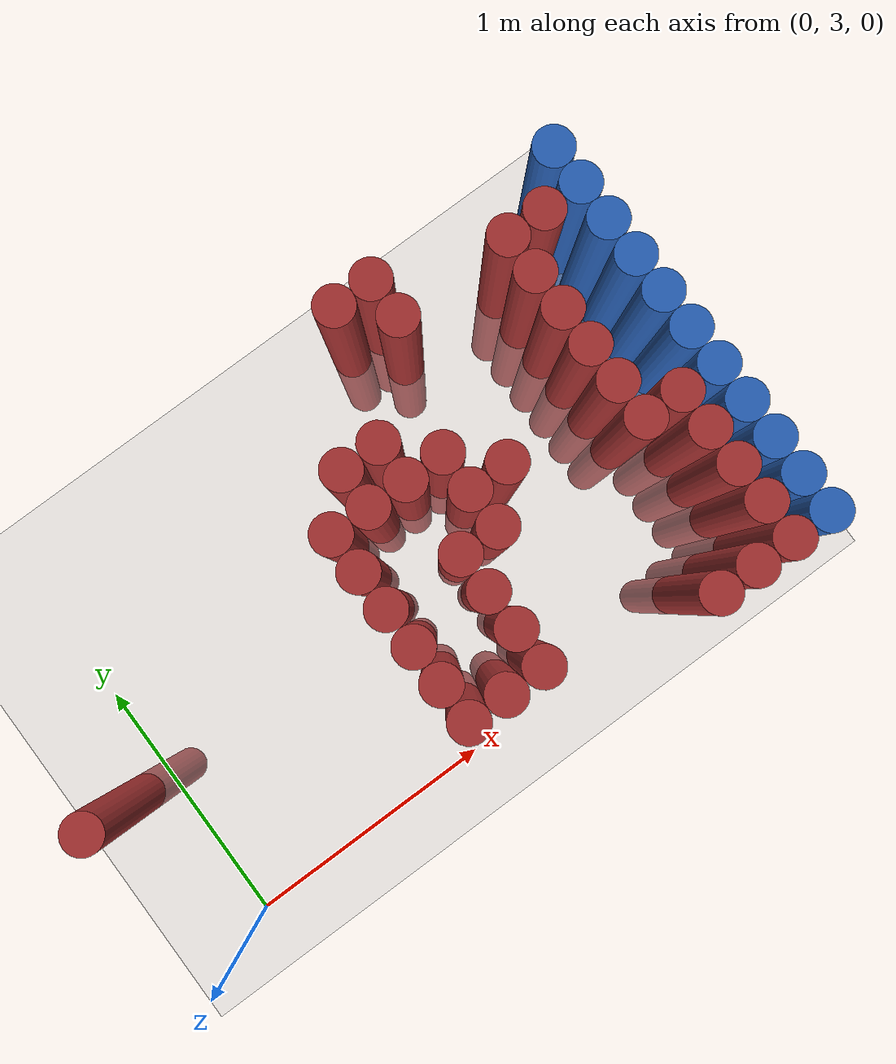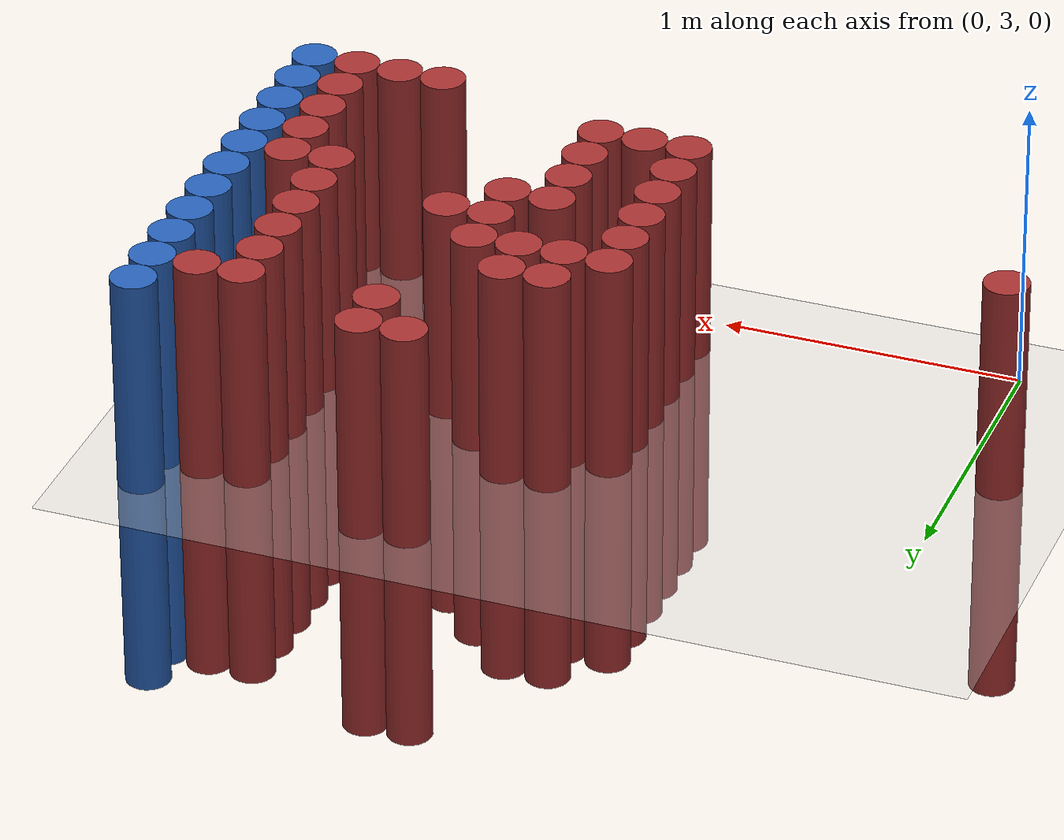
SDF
<sdf version="1.6">
 <world name="default">
  <model name="ground_plane">
   <static>1</static>
   <link name="link">
    <collision name="collision">
     <geometry><plane><normal>0 0 1</normal><size>100 100</size></plane></geometry>
     <surface><friction><ode><mu>100</mu><mu2>50</mu2></ode></friction></surface>
    </collision>
    <visual name="visual">
     <cast_shadows>0</cast_shadows>
     <geometry><plane><normal>0 0 1</normal><size>100 100</size></plane></geometry>
     <material>
      <script><uri>file://media/materials/scripts/gazebo.material</uri><name>Gazebo/Grey</name></script>
     </material>
    </visual>
   </link>
  </model>
  <model name="unit_cylinder_168">
   <static>1</static>
   <pose>-0.125000 3.625000 0.000000 0.000000 0.000000 0.000000</pose>
   <link name="link">
    <inertial>
     <mass>1</mass>
     <inertia><ixx>0.145833</ixx><ixy>0</ixy><ixz>0</ixz><iyy>0.145833</iyy><iyz>0</iyz><izz>0.125</izz></inertia>
    </inertial>
    <collision name="collision">
     <geometry><cylinder><radius>0.075000</radius><length>1.5</length></cylinder></geometry>
    </collision>
    <visual name="visual">
     <geometry><cylinder><radius>0.075000</radius><length>1.5</length></cylinder></geometry>
     <material>
      <ambient>0.648000 0.192000 0.192000 1</ambient>
      <diffuse>0.648000 0.192000 0.192000 1</diffuse>
     </material>
     <material>
      <script><name>Gazebo/Grey</name><uri>file://media/materials/scripts/gazebo.material</uri></script>
     </material>
    </visual>
   </link>
  </model>
  <model name="unit_cylinder_184">
   <static>1</static>
   <pose>1.075000 3.175000 0.000000 0.000000 0.000000 0.000000</pose>
   <link name="link">
    <inertial>
     <mass>1</mass>
     <inertia><ixx>0.145833</ixx><ixy>0</ixy><ixz>0</ixz><iyy>0.145833</iyy><iyz>0</iyz><izz>0.125</izz></inertia>
    </inertial>
    <collision name="collision">
     <geometry><cylinder><radius>0.075000</radius><length>1.5</length></cylinder></geometry>
    </collision>
    <visual name="visual">
     <geometry><cylinder><radius>0.075000</radius><length>1.5</length></cylinder></geometry>
     <material>
      <ambient>0.648000 0.192000 0.192000 1</ambient>
      <diffuse>0.648000 0.192000 0.192000 1</diffuse>
     </material>
     <material>
      <script><name>Gazebo/Grey</name><uri>file://media/materials/scripts/gazebo.material</uri></script>
     </material>
    </visual>
   </link>
  </model>
  <model name="unit_cylinder_185">
   <static>1</static>
   <pose>1.075000 3.325000 0.000000 0.000000 0.000000 0.000000</pose>
   <link name="link">
    <inertial>
     <mass>1</mass>
     <inertia><ixx>0.145833</ixx><ixy>0</ixy><ixz>0</ixz><iyy>0.145833</iyy><iyz>0</iyz><izz>0.125</izz></inertia>
    </inertial>
    <collision name="collision">
     <geometry><cylinder><radius>0.075000</radius><length>1.5</length></cylinder></geometry>
    </collision>
    <visual name="visual">
     <geometry><cylinder><radius>0.075000</radius><length>1.5</length></cylinder></geometry>
     <material>
      <ambient>0.648000 0.192000 0.192000 1</ambient>
      <diffuse>0.648000 0.192000 0.192000 1</diffuse>
     </material>
     <material>
      <script><name>Gazebo/Grey</name><uri>file://media/materials/scripts/gazebo.material</uri></script>
     </material>
    </visual>
   </link>
  </model>
  <model name="unit_cylinder_186">
   <static>1</static>
   <pose>1.075000 3.475000 0.000000 0.000000 0.000000 0.000000</pose>
   <link name="link">
    <inertial>
     <mass>1</mass>
     <inertia><ixx>0.145833</ixx><ixy>0</ixy><ixz>0</ixz><iyy>0.145833</iyy><iyz>0</iyz><izz>0.125</izz></inertia>
    </inertial>
    <collision name="collision">
     <geometry><cylinder><radius>0.075000</radius><length>1.5</length></cylinder></geometry>
    </collision>
    <visual name="visual">
     <geometry><cylinder><radius>0.075000</radius><length>1.5</length></cylinder></geometry>
     <material>
      <ambient>0.648000 0.192000 0.192000 1</ambient>
      <diffuse>0.648000 0.192000 0.192000 1</diffuse>
     </material>
     <material>
      <script><name>Gazebo/Grey</name><uri>file://media/materials/scripts/gazebo.material</uri></script>
     </material>
    </visual>
   </link>
  </model>
  <model name="unit_cylinder_187">
   <static>1</static>
   <pose>1.075000 3.625000 0.000000 0.000000 0.000000 0.000000</pose>
   <link name="link">
    <inertial>
     <mass>1</mass>
     <inertia><ixx>0.145833</ixx><ixy>0</ixy><ixz>0</ixz><iyy>0.145833</iyy><iyz>0</iyz><izz>0.125</izz></inertia>
    </inertial>
    <collision name="collision">
     <geometry><cylinder><radius>0.075000</radius><length>1.5</length></cylinder></geometry>
    </collision>
    <visual name="visual">
     <geometry><cylinder><radius>0.075000</radius><length>1.5</length></cylinder></geometry>
     <material>
      <ambient>0.648000 0.192000 0.192000 1</ambient>
      <diffuse>0.648000 0.192000 0.192000 1</diffuse>
     </material>
     <material>
      <script><name>Gazebo/Grey</name><uri>file://media/materials/scripts/gazebo.material</uri></script>
     </material>
    </visual>
   </link>
  </model>
  <model name="unit_cylinder_188">
   <static>1</static>
   <pose>1.075000 3.775000 0.000000 0.000000 0.000000 0.000000</pose>
   <link name="link">
    <inertial>
     <mass>1</mass>
     <inertia><ixx>0.145833</ixx><ixy>0</ixy><ixz>0</ixz><iyy>0.145833</iyy><iyz>0</iyz><izz>0.125</izz></inertia>
    </inertial>
    <collision name="collision">
     <geometry><cylinder><radius>0.075000</radius><length>1.5</length></cylinder></geometry>
    </collision>
    <visual name="visual">
     <geometry><cylinder><radius>0.075000</radius><length>1.5</length></cylinder></geometry>
     <material>
      <ambient>0.648000 0.192000 0.192000 1</ambient>
      <diffuse>0.648000 0.192000 0.192000 1</diffuse>
     </material>
     <material>
      <script><name>Gazebo/Grey</name><uri>file://media/materials/scripts/gazebo.material</uri></script>
     </material>
    </visual>
   </link>
  </model>
  <model name="unit_cylinder_189">
   <static>1</static>
   <pose>1.075000 3.925000 0.000000 0.000000 0.000000 0.000000</pose>
   <link name="link">
    <inertial>
     <mass>1</mass>
     <inertia><ixx>0.145833</ixx><ixy>0</ixy><ixz>0</ixz><iyy>0.145833</iyy><iyz>0</iyz><izz>0.125</izz></inertia>
    </inertial>
    <collision name="collision">
     <geometry><cylinder><radius>0.075000</radius><length>1.5</length></cylinder></geometry>
    </collision>
    <visual name="visual">
     <geometry><cylinder><radius>0.075000</radius><length>1.5</length></cylinder></geometry>
     <material>
      <ambient>0.648000 0.192000 0.192000 1</ambient>
      <diffuse>0.648000 0.192000 0.192000 1</diffuse>
     </material>
     <material>
      <script><name>Gazebo/Grey</name><uri>file://media/materials/scripts/gazebo.material</uri></script>
     </material>
    </visual>
   </link>
  </model>
  <model name="unit_cylinder_193">
   <static>1</static>
   <pose>1.225000 3.175000 0.000000 0.000000 0.000000 0.000000</pose>
   <link name="link">
    <inertial>
     <mass>1</mass>
     <inertia><ixx>0.145833</ixx><ixy>0</ixy><ixz>0</ixz><iyy>0.145833</iyy><iyz>0</iyz><izz>0.125</izz></inertia>
    </inertial>
    <collision name="collision">
     <geometry><cylinder><radius>0.075000</radius><length>1.5</length></cylinder></geometry>
    </collision>
    <visual name="visual">
     <geometry><cylinder><radius>0.075000</radius><length>1.5</length></cylinder></geometry>
     <material>
      <ambient>0.648000 0.192000 0.192000 1</ambient>
      <diffuse>0.648000 0.192000 0.192000 1</diffuse>
     </material>
     <material>
      <script><name>Gazebo/Grey</name><uri>file://media/materials/scripts/gazebo.material</uri></script>
     </material>
    </visual>
   </link>
  </model>
  <model name="unit_cylinder_194">
   <static>1</static>
   <pose>1.225000 3.925000 0.000000 0.000000 0.000000 0.000000</pose>
   <link name="link">
    <inertial>
     <mass>1</mass>
     <inertia><ixx>0.145833</ixx><ixy>0</ixy><ixz>0</ixz><iyy>0.145833</iyy><iyz>0</iyz><izz>0.125</izz></inertia>
    </inertial>
    <collision name="collision">
     <geometry><cylinder><radius>0.075000</radius><length>1.5</length></cylinder></geometry>
    </collision>
    <visual name="visual">
     <geometry><cylinder><radius>0.075000</radius><length>1.5</length></cylinder></geometry>
     <material>
      <ambient>0.648000 0.192000 0.192000 1</ambient>
      <diffuse>0.648000 0.192000 0.192000 1</diffuse>
     </material>
     <material>
      <script><name>Gazebo/Grey</name><uri>file://media/materials/scripts/gazebo.material</uri></script>
     </material>
    </visual>
   </link>
  </model>
  <model name="unit_cylinder_195">
   <static>1</static>
   <pose>1.225000 4.075000 0.000000 0.000000 0.000000 0.000000</pose>
   <link name="link">
    <inertial>
     <mass>1</mass>
     <inertia><ixx>0.145833</ixx><ixy>0</ixy><ixz>0</ixz><iyy>0.145833</iyy><iyz>0</iyz><izz>0.125</izz></inertia>
    </inertial>
    <collision name="collision">
     <geometry><cylinder><radius>0.075000</radius><length>1.5</length></cylinder></geometry>
    </collision>
    <visual name="visual">
     <geometry><cylinder><radius>0.075000</radius><length>1.5</length></cylinder></geometry>
     <material>
      <ambient>0.648000 0.192000 0.192000 1</ambient>
      <diffuse>0.648000 0.192000 0.192000 1</diffuse>
     </material>
     <material>
      <script><name>Gazebo/Grey</name><uri>file://media/materials/scripts/gazebo.material</uri></script>
     </material>
    </visual>
   </link>
  </model>
  <model name="unit_cylinder_197">
   <static>1</static>
   <pose>1.375000 3.175000 0.000000 0.000000 0.000000 0.000000</pose>
   <link name="link">
    <inertial>
     <mass>1</mass>
     <inertia><ixx>0.145833</ixx><ixy>0</ixy><ixz>0</ixz><iyy>0.145833</iyy><iyz>0</iyz><izz>0.125</izz></inertia>
    </inertial>
    <collision name="collision">
     <geometry><cylinder><radius>0.075000</radius><length>1.5</length></cylinder></geometry>
    </collision>
    <visual name="visual">
     <geometry><cylinder><radius>0.075000</radius><length>1.5</length></cylinder></geometry>
     <material>
      <ambient>0.648000 0.192000 0.192000 1</ambient>
      <diffuse>0.648000 0.192000 0.192000 1</diffuse>
     </material>
     <material>
      <script><name>Gazebo/Grey</name><uri>file://media/materials/scripts/gazebo.material</uri></script>
     </material>
    </visual>
   </link>
  </model>
  <model name="unit_cylinder_198">
   <static>1</static>
   <pose>1.375000 3.325000 0.000000 0.000000 0.000000 0.000000</pose>
   <link name="link">
    <inertial>
     <mass>1</mass>
     <inertia><ixx>0.145833</ixx><ixy>0</ixy><ixz>0</ixz><iyy>0.145833</iyy><iyz>0</iyz><izz>0.125</izz></inertia>
    </inertial>
    <collision name="collision">
     <geometry><cylinder><radius>0.075000</radius><length>1.5</length></cylinder></geometry>
    </collision>
    <visual name="visual">
     <geometry><cylinder><radius>0.075000</radius><length>1.5</length></cylinder></geometry>
     <material>
      <ambient>0.648000 0.192000 0.192000 1</ambient>
      <diffuse>0.648000 0.192000 0.192000 1</diffuse>
     </material>
     <material>
      <script><name>Gazebo/Grey</name><uri>file://media/materials/scripts/gazebo.material</uri></script>
     </material>
    </visual>
   </link>
  </model>
  <model name="unit_cylinder_199">
   <static>1</static>
   <pose>1.375000 3.475000 0.000000 0.000000 0.000000 0.000000</pose>
   <link name="link">
    <inertial>
     <mass>1</mass>
     <inertia><ixx>0.145833</ixx><ixy>0</ixy><ixz>0</ixz><iyy>0.145833</iyy><iyz>0</iyz><izz>0.125</izz></inertia>
    </inertial>
    <collision name="collision">
     <geometry><cylinder><radius>0.075000</radius><length>1.5</length></cylinder></geometry>
    </collision>
    <visual name="visual">
     <geometry><cylinder><radius>0.075000</radius><length>1.5</length></cylinder></geometry>
     <material>
      <ambient>0.648000 0.192000 0.192000 1</ambient>
      <diffuse>0.648000 0.192000 0.192000 1</diffuse>
     </material>
     <material>
      <script><name>Gazebo/Grey</name><uri>file://media/materials/scripts/gazebo.material</uri></script>
     </material>
    </visual>
   </link>
  </model>
  <model name="unit_cylinder_200">
   <static>1</static>
   <pose>1.375000 3.625000 0.000000 0.000000 0.000000 0.000000</pose>
   <link name="link">
    <inertial>
     <mass>1</mass>
     <inertia><ixx>0.145833</ixx><ixy>0</ixy><ixz>0</ixz><iyy>0.145833</iyy><iyz>0</iyz><izz>0.125</izz></inertia>
    </inertial>
    <collision name="collision">
     <geometry><cylinder><radius>0.075000</radius><length>1.5</length></cylinder></geometry>
    </collision>
    <visual name="visual">
     <geometry><cylinder><radius>0.075000</radius><length>1.5</length></cylinder></geometry>
     <material>
      <ambient>0.648000 0.192000 0.192000 1</ambient>
      <diffuse>0.648000 0.192000 0.192000 1</diffuse>
     </material>
     <material>
      <script><name>Gazebo/Grey</name><uri>file://media/materials/scripts/gazebo.material</uri></script>
     </material>
    </visual>
   </link>
  </model>
  <model name="unit_cylinder_201">
   <static>1</static>
   <pose>1.375000 3.925000 0.000000 0.000000 0.000000 0.000000</pose>
   <link name="link">
    <inertial>
     <mass>1</mass>
     <inertia><ixx>0.145833</ixx><ixy>0</ixy><ixz>0</ixz><iyy>0.145833</iyy><iyz>0</iyz><izz>0.125</izz></inertia>
    </inertial>
    <collision name="collision">
     <geometry><cylinder><radius>0.075000</radius><length>1.5</length></cylinder></geometry>
    </collision>
    <visual name="visual">
     <geometry><cylinder><radius>0.075000</radius><length>1.5</length></cylinder></geometry>
     <material>
      <ambient>0.648000 0.192000 0.192000 1</ambient>
      <diffuse>0.648000 0.192000 0.192000 1</diffuse>
     </material>
     <material>
      <script><name>Gazebo/Grey</name><uri>file://media/materials/scripts/gazebo.material</uri></script>
     </material>
    </visual>
   </link>
  </model>
  <model name="unit_cylinder_202">
   <static>1</static>
   <pose>1.375000 4.075000 0.000000 0.000000 0.000000 0.000000</pose>
   <link name="link">
    <inertial>
     <mass>1</mass>
     <inertia><ixx>0.145833</ixx><ixy>0</ixy><ixz>0</ixz><iyy>0.145833</iyy><iyz>0</iyz><izz>0.125</izz></inertia>
    </inertial>
    <collision name="collision">
     <geometry><cylinder><radius>0.075000</radius><length>1.5</length></cylinder></geometry>
    </collision>
    <visual name="visual">
     <geometry><cylinder><radius>0.075000</radius><length>1.5</length></cylinder></geometry>
     <material>
      <ambient>0.648000 0.192000 0.192000 1</ambient>
      <diffuse>0.648000 0.192000 0.192000 1</diffuse>
     </material>
     <material>
      <script><name>Gazebo/Grey</name><uri>file://media/materials/scripts/gazebo.material</uri></script>
     </material>
    </visual>
   </link>
  </model>
  <model name="unit_cylinder_210">
   <static>1</static>
   <pose>1.525000 3.625000 0.000000 0.000000 0.000000 0.000000</pose>
   <link name="link">
    <inertial>
     <mass>1</mass>
     <inertia><ixx>0.145833</ixx><ixy>0</ixy><ixz>0</ixz><iyy>0.145833</iyy><iyz>0</iyz><izz>0.125</izz></inertia>
    </inertial>
    <collision name="collision">
     <geometry><cylinder><radius>0.075000</radius><length>1.5</length></cylinder></geometry>
    </collision>
    <visual name="visual">
     <geometry><cylinder><radius>0.075000</radius><length>1.5</length></cylinder></geometry>
     <material>
      <ambient>0.648000 0.192000 0.192000 1</ambient>
      <diffuse>0.648000 0.192000 0.192000 1</diffuse>
     </material>
     <material>
      <script><name>Gazebo/Grey</name><uri>file://media/materials/scripts/gazebo.material</uri></script>
     </material>
    </visual>
   </link>
  </model>
  <model name="unit_cylinder_211">
   <static>1</static>
   <pose>1.525000 3.775000 0.000000 0.000000 0.000000 0.000000</pose>
   <link name="link">
    <inertial>
     <mass>1</mass>
     <inertia><ixx>0.145833</ixx><ixy>0</ixy><ixz>0</ixz><iyy>0.145833</iyy><iyz>0</iyz><izz>0.125</izz></inertia>
    </inertial>
    <collision name="collision">
     <geometry><cylinder><radius>0.075000</radius><length>1.5</length></cylinder></geometry>
    </collision>
    <visual name="visual">
     <geometry><cylinder><radius>0.075000</radius><length>1.5</length></cylinder></geometry>
     <material>
      <ambient>0.648000 0.192000 0.192000 1</ambient>
      <diffuse>0.648000 0.192000 0.192000 1</diffuse>
     </material>
     <material>
      <script><name>Gazebo/Grey</name><uri>file://media/materials/scripts/gazebo.material</uri></script>
     </material>
    </visual>
   </link>
  </model>
  <model name="unit_cylinder_212">
   <static>1</static>
   <pose>1.525000 3.925000 0.000000 0.000000 0.000000 0.000000</pose>
   <link name="link">
    <inertial>
     <mass>1</mass>
     <inertia><ixx>0.145833</ixx><ixy>0</ixy><ixz>0</ixz><iyy>0.145833</iyy><iyz>0</iyz><izz>0.125</izz></inertia>
    </inertial>
    <collision name="collision">
     <geometry><cylinder><radius>0.075000</radius><length>1.5</length></cylinder></geometry>
    </collision>
    <visual name="visual">
     <geometry><cylinder><radius>0.075000</radius><length>1.5</length></cylinder></geometry>
     <material>
      <ambient>0.648000 0.192000 0.192000 1</ambient>
      <diffuse>0.648000 0.192000 0.192000 1</diffuse>
     </material>
     <material>
      <script><name>Gazebo/Grey</name><uri>file://media/materials/scripts/gazebo.material</uri></script>
     </material>
    </visual>
   </link>
  </model>
  <model name="unit_cylinder_213">
   <static>1</static>
   <pose>1.525000 4.525000 0.000000 0.000000 0.000000 0.000000</pose>
   <link name="link">
    <inertial>
     <mass>1</mass>
     <inertia><ixx>0.145833</ixx><ixy>0</ixy><ixz>0</ixz><iyy>0.145833</iyy><iyz>0</iyz><izz>0.125</izz></inertia>
    </inertial>
    <collision name="collision">
     <geometry><cylinder><radius>0.075000</radius><length>1.5</length></cylinder></geometry>
    </collision>
    <visual name="visual">
     <geometry><cylinder><radius>0.075000</radius><length>1.5</length></cylinder></geometry>
     <material>
      <ambient>0.648000 0.192000 0.192000 1</ambient>
      <diffuse>0.648000 0.192000 0.192000 1</diffuse>
     </material>
     <material>
      <script><name>Gazebo/Grey</name><uri>file://media/materials/scripts/gazebo.material</uri></script>
     </material>
    </visual>
   </link>
  </model>
  <model name="unit_cylinder_219">
   <static>1</static>
   <pose>1.675000 3.775000 0.000000 0.000000 0.000000 0.000000</pose>
   <link name="link">
    <inertial>
     <mass>1</mass>
     <inertia><ixx>0.145833</ixx><ixy>0</ixy><ixz>0</ixz><iyy>0.145833</iyy><iyz>0</iyz><izz>0.125</izz></inertia>
    </inertial>
    <collision name="collision">
     <geometry><cylinder><radius>0.075000</radius><length>1.5</length></cylinder></geometry>
    </collision>
    <visual name="visual">
     <geometry><cylinder><radius>0.075000</radius><length>1.5</length></cylinder></geometry>
     <material>
      <ambient>0.648000 0.192000 0.192000 1</ambient>
      <diffuse>0.648000 0.192000 0.192000 1</diffuse>
     </material>
     <material>
      <script><name>Gazebo/Grey</name><uri>file://media/materials/scripts/gazebo.material</uri></script>
     </material>
    </visual>
   </link>
  </model>
  <model name="unit_cylinder_220">
   <static>1</static>
   <pose>1.675000 4.375000 0.000000 0.000000 0.000000 0.000000</pose>
   <link name="link">
    <inertial>
     <mass>1</mass>
     <inertia><ixx>0.145833</ixx><ixy>0</ixy><ixz>0</ixz><iyy>0.145833</iyy><iyz>0</iyz><izz>0.125</izz></inertia>
    </inertial>
    <collision name="collision">
     <geometry><cylinder><radius>0.075000</radius><length>1.5</length></cylinder></geometry>
    </collision>
    <visual name="visual">
     <geometry><cylinder><radius>0.075000</radius><length>1.5</length></cylinder></geometry>
     <material>
      <ambient>0.648000 0.192000 0.192000 1</ambient>
      <diffuse>0.648000 0.192000 0.192000 1</diffuse>
     </material>
     <material>
      <script><name>Gazebo/Grey</name><uri>file://media/materials/scripts/gazebo.material</uri></script>
     </material>
    </visual>
   </link>
  </model>
  <model name="unit_cylinder_221">
   <static>1</static>
   <pose>1.675000 4.525000 0.000000 0.000000 0.000000 0.000000</pose>
   <link name="link">
    <inertial>
     <mass>1</mass>
     <inertia><ixx>0.145833</ixx><ixy>0</ixy><ixz>0</ixz><iyy>0.145833</iyy><iyz>0</iyz><izz>0.125</izz></inertia>
    </inertial>
    <collision name="collision">
     <geometry><cylinder><radius>0.075000</radius><length>1.5</length></cylinder></geometry>
    </collision>
    <visual name="visual">
     <geometry><cylinder><radius>0.075000</radius><length>1.5</length></cylinder></geometry>
     <material>
      <ambient>0.648000 0.192000 0.192000 1</ambient>
      <diffuse>0.648000 0.192000 0.192000 1</diffuse>
     </material>
     <material>
      <script><name>Gazebo/Grey</name><uri>file://media/materials/scripts/gazebo.material</uri></script>
     </material>
    </visual>
   </link>
  </model>
  <model name="unit_cylinder_233">
   <static>1</static>
   <pose>1.975000 3.025000 0.000000 0.000000 0.000000 0.000000</pose>
   <link name="link">
    <inertial>
     <mass>1</mass>
     <inertia><ixx>0.145833</ixx><ixy>0</ixy><ixz>0</ixz><iyy>0.145833</iyy><iyz>0</iyz><izz>0.125</izz></inertia>
    </inertial>
    <collision name="collision">
     <geometry><cylinder><radius>0.075000</radius><length>1.5</length></cylinder></geometry>
    </collision>
    <visual name="visual">
     <geometry><cylinder><radius>0.075000</radius><length>1.5</length></cylinder></geometry>
     <material>
      <ambient>0.648000 0.192000 0.192000 1</ambient>
      <diffuse>0.648000 0.192000 0.192000 1</diffuse>
     </material>
     <material>
      <script><name>Gazebo/Grey</name><uri>file://media/materials/scripts/gazebo.material</uri></script>
     </material>
    </visual>
   </link>
  </model>
  <model name="unit_cylinder_240">
   <static>1</static>
   <pose>2.125000 3.025000 0.000000 0.000000 0.000000 0.000000</pose>
   <link name="link">
    <inertial>
     <mass>1</mass>
     <inertia><ixx>0.145833</ixx><ixy>0</ixy><ixz>0</ixz><iyy>0.145833</iyy><iyz>0</iyz><izz>0.125</izz></inertia>
    </inertial>
    <collision name="collision">
     <geometry><cylinder><radius>0.075000</radius><length>1.5</length></cylinder></geometry>
    </collision>
    <visual name="visual">
     <geometry><cylinder><radius>0.075000</radius><length>1.5</length></cylinder></geometry>
     <material>
      <ambient>0.648000 0.192000 0.192000 1</ambient>
      <diffuse>0.648000 0.192000 0.192000 1</diffuse>
     </material>
     <material>
      <script><name>Gazebo/Grey</name><uri>file://media/materials/scripts/gazebo.material</uri></script>
     </material>
    </visual>
   </link>
  </model>
  <model name="unit_cylinder_241">
   <static>1</static>
   <pose>2.125000 3.625000 0.000000 0.000000 0.000000 0.000000</pose>
   <link name="link">
    <inertial>
     <mass>1</mass>
     <inertia><ixx>0.145833</ixx><ixy>0</ixy><ixz>0</ixz><iyy>0.145833</iyy><iyz>0</iyz><izz>0.125</izz></inertia>
    </inertial>
    <collision name="collision">
     <geometry><cylinder><radius>0.075000</radius><length>1.5</length></cylinder></geometry>
    </collision>
    <visual name="visual">
     <geometry><cylinder><radius>0.075000</radius><length>1.5</length></cylinder></geometry>
     <material>
      <ambient>0.648000 0.192000 0.192000 1</ambient>
      <diffuse>0.648000 0.192000 0.192000 1</diffuse>
     </material>
     <material>
      <script><name>Gazebo/Grey</name><uri>file://media/materials/scripts/gazebo.material</uri></script>
     </material>
    </visual>
   </link>
  </model>
  <model name="unit_cylinder_242">
   <static>1</static>
   <pose>2.125000 3.775000 0.000000 0.000000 0.000000 0.000000</pose>
   <link name="link">
    <inertial>
     <mass>1</mass>
     <inertia><ixx>0.145833</ixx><ixy>0</ixy><ixz>0</ixz><iyy>0.145833</iyy><iyz>0</iyz><izz>0.125</izz></inertia>
    </inertial>
    <collision name="collision">
     <geometry><cylinder><radius>0.075000</radius><length>1.5</length></cylinder></geometry>
    </collision>
    <visual name="visual">
     <geometry><cylinder><radius>0.075000</radius><length>1.5</length></cylinder></geometry>
     <material>
      <ambient>0.648000 0.192000 0.192000 1</ambient>
      <diffuse>0.648000 0.192000 0.192000 1</diffuse>
     </material>
     <material>
      <script><name>Gazebo/Grey</name><uri>file://media/materials/scripts/gazebo.material</uri></script>
     </material>
    </visual>
   </link>
  </model>
  <model name="unit_cylinder_243">
   <static>1</static>
   <pose>2.125000 3.925000 0.000000 0.000000 0.000000 0.000000</pose>
   <link name="link">
    <inertial>
     <mass>1</mass>
     <inertia><ixx>0.145833</ixx><ixy>0</ixy><ixz>0</ixz><iyy>0.145833</iyy><iyz>0</iyz><izz>0.125</izz></inertia>
    </inertial>
    <collision name="collision">
     <geometry><cylinder><radius>0.075000</radius><length>1.5</length></cylinder></geometry>
    </collision>
    <visual name="visual">
     <geometry><cylinder><radius>0.075000</radius><length>1.5</length></cylinder></geometry>
     <material>
      <ambient>0.648000 0.192000 0.192000 1</ambient>
      <diffuse>0.648000 0.192000 0.192000 1</diffuse>
     </material>
     <material>
      <script><name>Gazebo/Grey</name><uri>file://media/materials/scripts/gazebo.material</uri></script>
     </material>
    </visual>
   </link>
  </model>
  <model name="unit_cylinder_244">
   <static>1</static>
   <pose>2.125000 4.075000 0.000000 0.000000 0.000000 0.000000</pose>
   <link name="link">
    <inertial>
     <mass>1</mass>
     <inertia><ixx>0.145833</ixx><ixy>0</ixy><ixz>0</ixz><iyy>0.145833</iyy><iyz>0</iyz><izz>0.125</izz></inertia>
    </inertial>
    <collision name="collision">
     <geometry><cylinder><radius>0.075000</radius><length>1.5</length></cylinder></geometry>
    </collision>
    <visual name="visual">
     <geometry><cylinder><radius>0.075000</radius><length>1.5</length></cylinder></geometry>
     <material>
      <ambient>0.648000 0.192000 0.192000 1</ambient>
      <diffuse>0.648000 0.192000 0.192000 1</diffuse>
     </material>
     <material>
      <script><name>Gazebo/Grey</name><uri>file://media/materials/scripts/gazebo.material</uri></script>
     </material>
    </visual>
   </link>
  </model>
  <model name="unit_cylinder_245">
   <static>1</static>
   <pose>2.125000 4.225000 0.000000 0.000000 0.000000 0.000000</pose>
   <link name="link">
    <inertial>
     <mass>1</mass>
     <inertia><ixx>0.145833</ixx><ixy>0</ixy><ixz>0</ixz><iyy>0.145833</iyy><iyz>0</iyz><izz>0.125</izz></inertia>
    </inertial>
    <collision name="collision">
     <geometry><cylinder><radius>0.075000</radius><length>1.5</length></cylinder></geometry>
    </collision>
    <visual name="visual">
     <geometry><cylinder><radius>0.075000</radius><length>1.5</length></cylinder></geometry>
     <material>
      <ambient>0.648000 0.192000 0.192000 1</ambient>
      <diffuse>0.648000 0.192000 0.192000 1</diffuse>
     </material>
     <material>
      <script><name>Gazebo/Grey</name><uri>file://media/materials/scripts/gazebo.material</uri></script>
     </material>
    </visual>
   </link>
  </model>
  <model name="unit_cylinder_246">
   <static>1</static>
   <pose>2.125000 4.375000 0.000000 0.000000 0.000000 0.000000</pose>
   <link name="link">
    <inertial>
     <mass>1</mass>
     <inertia><ixx>0.145833</ixx><ixy>0</ixy><ixz>0</ixz><iyy>0.145833</iyy><iyz>0</iyz><izz>0.125</izz></inertia>
    </inertial>
    <collision name="collision">
     <geometry><cylinder><radius>0.075000</radius><length>1.5</length></cylinder></geometry>
    </collision>
    <visual name="visual">
     <geometry><cylinder><radius>0.075000</radius><length>1.5</length></cylinder></geometry>
     <material>
      <ambient>0.648000 0.192000 0.192000 1</ambient>
      <diffuse>0.648000 0.192000 0.192000 1</diffuse>
     </material>
     <material>
      <script><name>Gazebo/Grey</name><uri>file://media/materials/scripts/gazebo.material</uri></script>
     </material>
    </visual>
   </link>
  </model>
  <model name="unit_cylinder_256">
   <static>1</static>
   <pose>2.275000 3.025000 0.000000 0.000000 0.000000 0.000000</pose>
   <link name="link">
    <inertial>
     <mass>1</mass>
     <inertia><ixx>0.145833</ixx><ixy>0</ixy><ixz>0</ixz><iyy>0.145833</iyy><iyz>0</iyz><izz>0.125</izz></inertia>
    </inertial>
    <collision name="collision">
     <geometry><cylinder><radius>0.075000</radius><length>1.5</length></cylinder></geometry>
    </collision>
    <visual name="visual">
     <geometry><cylinder><radius>0.075000</radius><length>1.5</length></cylinder></geometry>
     <material>
      <ambient>0.648000 0.192000 0.192000 1</ambient>
      <diffuse>0.648000 0.192000 0.192000 1</diffuse>
     </material>
     <material>
      <script><name>Gazebo/Grey</name><uri>file://media/materials/scripts/gazebo.material</uri></script>
     </material>
    </visual>
   </link>
  </model>
  <model name="unit_cylinder_257">
   <static>1</static>
   <pose>2.275000 3.175000 0.000000 0.000000 0.000000 0.000000</pose>
   <link name="link">
    <inertial>
     <mass>1</mass>
     <inertia><ixx>0.145833</ixx><ixy>0</ixy><ixz>0</ixz><iyy>0.145833</iyy><iyz>0</iyz><izz>0.125</izz></inertia>
    </inertial>
    <collision name="collision">
     <geometry><cylinder><radius>0.075000</radius><length>1.5</length></cylinder></geometry>
    </collision>
    <visual name="visual">
     <geometry><cylinder><radius>0.075000</radius><length>1.5</length></cylinder></geometry>
     <material>
      <ambient>0.648000 0.192000 0.192000 1</ambient>
      <diffuse>0.648000 0.192000 0.192000 1</diffuse>
     </material>
     <material>
      <script><name>Gazebo/Grey</name><uri>file://media/materials/scripts/gazebo.material</uri></script>
     </material>
    </visual>
   </link>
  </model>
  <model name="unit_cylinder_258">
   <static>1</static>
   <pose>2.275000 3.325000 0.000000 0.000000 0.000000 0.000000</pose>
   <link name="link">
    <inertial>
     <mass>1</mass>
     <inertia><ixx>0.145833</ixx><ixy>0</ixy><ixz>0</ixz><iyy>0.145833</iyy><iyz>0</iyz><izz>0.125</izz></inertia>
    </inertial>
    <collision name="collision">
     <geometry><cylinder><radius>0.075000</radius><length>1.5</length></cylinder></geometry>
    </collision>
    <visual name="visual">
     <geometry><cylinder><radius>0.075000</radius><length>1.5</length></cylinder></geometry>
     <material>
      <ambient>0.648000 0.192000 0.192000 1</ambient>
      <diffuse>0.648000 0.192000 0.192000 1</diffuse>
     </material>
     <material>
      <script><name>Gazebo/Grey</name><uri>file://media/materials/scripts/gazebo.material</uri></script>
     </material>
    </visual>
   </link>
  </model>
  <model name="unit_cylinder_259">
   <static>1</static>
   <pose>2.275000 3.475000 0.000000 0.000000 0.000000 0.000000</pose>
   <link name="link">
    <inertial>
     <mass>1</mass>
     <inertia><ixx>0.145833</ixx><ixy>0</ixy><ixz>0</ixz><iyy>0.145833</iyy><iyz>0</iyz><izz>0.125</izz></inertia>
    </inertial>
    <collision name="collision">
     <geometry><cylinder><radius>0.075000</radius><length>1.5</length></cylinder></geometry>
    </collision>
    <visual name="visual">
     <geometry><cylinder><radius>0.075000</radius><length>1.5</length></cylinder></geometry>
     <material>
      <ambient>0.648000 0.192000 0.192000 1</ambient>
      <diffuse>0.648000 0.192000 0.192000 1</diffuse>
     </material>
     <material>
      <script><name>Gazebo/Grey</name><uri>file://media/materials/scripts/gazebo.material</uri></script>
     </material>
    </visual>
   </link>
  </model>
  <model name="unit_cylinder_260">
   <static>1</static>
   <pose>2.275000 3.625000 0.000000 0.000000 0.000000 0.000000</pose>
   <link name="link">
    <inertial>
     <mass>1</mass>
     <inertia><ixx>0.145833</ixx><ixy>0</ixy><ixz>0</ixz><iyy>0.145833</iyy><iyz>0</iyz><izz>0.125</izz></inertia>
    </inertial>
    <collision name="collision">
     <geometry><cylinder><radius>0.075000</radius><length>1.5</length></cylinder></geometry>
    </collision>
    <visual name="visual">
     <geometry><cylinder><radius>0.075000</radius><length>1.5</length></cylinder></geometry>
     <material>
      <ambient>0.648000 0.192000 0.192000 1</ambient>
      <diffuse>0.648000 0.192000 0.192000 1</diffuse>
     </material>
     <material>
      <script><name>Gazebo/Grey</name><uri>file://media/materials/scripts/gazebo.material</uri></script>
     </material>
    </visual>
   </link>
  </model>
  <model name="unit_cylinder_261">
   <static>1</static>
   <pose>2.275000 4.375000 0.000000 0.000000 0.000000 0.000000</pose>
   <link name="link">
    <inertial>
     <mass>1</mass>
     <inertia><ixx>0.145833</ixx><ixy>0</ixy><ixz>0</ixz><iyy>0.145833</iyy><iyz>0</iyz><izz>0.125</izz></inertia>
    </inertial>
    <collision name="collision">
     <geometry><cylinder><radius>0.075000</radius><length>1.5</length></cylinder></geometry>
    </collision>
    <visual name="visual">
     <geometry><cylinder><radius>0.075000</radius><length>1.5</length></cylinder></geometry>
     <material>
      <ambient>0.648000 0.192000 0.192000 1</ambient>
      <diffuse>0.648000 0.192000 0.192000 1</diffuse>
     </material>
     <material>
      <script><name>Gazebo/Grey</name><uri>file://media/materials/scripts/gazebo.material</uri></script>
     </material>
    </visual>
   </link>
  </model>
  <model name="unit_cylinder_281">
   <static>1</static>
   <pose>2.425000 3.025000 0.000000 0.000000 0.000000 0.000000</pose>
   <link name="link">
    <inertial>
     <mass>1</mass>
     <inertia><ixx>0.145833</ixx><ixy>0</ixy><ixz>0</ixz><iyy>0.145833</iyy><iyz>0</iyz><izz>0.125</izz></inertia>
    </inertial>
    <collision name="collision">
     <geometry><cylinder><radius>0.075000</radius><length>1.5</length></cylinder></geometry>
    </collision>
    <visual name="visual">
     <geometry><cylinder><radius>0.075000</radius><length>1.5</length></cylinder></geometry>
     <material>
      <ambient>0.152000 0.379000 0.720000 1</ambient>
      <diffuse>0.152000 0.379000 0.720000 1</diffuse>
     </material>
     <material>
      <script><name>Gazebo/Grey</name><uri>file://media/materials/scripts/gazebo.material</uri></script>
     </material>
    </visual>
   </link>
  </model>
  <model name="unit_cylinder_282">
   <static>1</static>
   <pose>2.425000 3.175000 0.000000 0.000000 0.000000 0.000000</pose>
   <link name="link">
    <inertial>
     <mass>1</mass>
     <inertia><ixx>0.145833</ixx><ixy>0</ixy><ixz>0</ixz><iyy>0.145833</iyy><iyz>0</iyz><izz>0.125</izz></inertia>
    </inertial>
    <collision name="collision">
     <geometry><cylinder><radius>0.075000</radius><length>1.5</length></cylinder></geometry>
    </collision>
    <visual name="visual">
     <geometry><cylinder><radius>0.075000</radius><length>1.5</length></cylinder></geometry>
     <material>
      <ambient>0.152000 0.379000 0.720000 1</ambient>
      <diffuse>0.152000 0.379000 0.720000 1</diffuse>
     </material>
     <material>
      <script><name>Gazebo/Grey</name><uri>file://media/materials/scripts/gazebo.material</uri></script>
     </material>
    </visual>
   </link>
  </model>
  <model name="unit_cylinder_283">
   <static>1</static>
   <pose>2.425000 3.325000 0.000000 0.000000 0.000000 0.000000</pose>
   <link name="link">
    <inertial>
     <mass>1</mass>
     <inertia><ixx>0.145833</ixx><ixy>0</ixy><ixz>0</ixz><iyy>0.145833</iyy><iyz>0</iyz><izz>0.125</izz></inertia>
    </inertial>
    <collision name="collision">
     <geometry><cylinder><radius>0.075000</radius><length>1.5</length></cylinder></geometry>
    </collision>
    <visual name="visual">
     <geometry><cylinder><radius>0.075000</radius><length>1.5</length></cylinder></geometry>
     <material>
      <ambient>0.152000 0.379000 0.720000 1</ambient>
      <diffuse>0.152000 0.379000 0.720000 1</diffuse>
     </material>
     <material>
      <script><name>Gazebo/Grey</name><uri>file://media/materials/scripts/gazebo.material</uri></script>
     </material>
    </visual>
   </link>
  </model>
  <model name="unit_cylinder_284">
   <static>1</static>
   <pose>2.425000 3.475000 0.000000 0.000000 0.000000 0.000000</pose>
   <link name="link">
    <inertial>
     <mass>1</mass>
     <inertia><ixx>0.145833</ixx><ixy>0</ixy><ixz>0</ixz><iyy>0.145833</iyy><iyz>0</iyz><izz>0.125</izz></inertia>
    </inertial>
    <collision name="collision">
     <geometry><cylinder><radius>0.075000</radius><length>1.5</length></cylinder></geometry>
    </collision>
    <visual name="visual">
     <geometry><cylinder><radius>0.075000</radius><length>1.5</length></cylinder></geometry>
     <material>
      <ambient>0.152000 0.379000 0.720000 1</ambient>
      <diffuse>0.152000 0.379000 0.720000 1</diffuse>
     </material>
     <material>
      <script><name>Gazebo/Grey</name><uri>file://media/materials/scripts/gazebo.material</uri></script>
     </material>
    </visual>
   </link>
  </model>
  <model name="unit_cylinder_285">
   <static>1</static>
   <pose>2.425000 3.625000 0.000000 0.000000 0.000000 0.000000</pose>
   <link name="link">
    <inertial>
     <mass>1</mass>
     <inertia><ixx>0.145833</ixx><ixy>0</ixy><ixz>0</ixz><iyy>0.145833</iyy><iyz>0</iyz><izz>0.125</izz></inertia>
    </inertial>
    <collision name="collision">
     <geometry><cylinder><radius>0.075000</radius><length>1.5</length></cylinder></geometry>
    </collision>
    <visual name="visual">
     <geometry><cylinder><radius>0.075000</radius><length>1.5</length></cylinder></geometry>
     <material>
      <ambient>0.152000 0.379000 0.720000 1</ambient>
      <diffuse>0.152000 0.379000 0.720000 1</diffuse>
     </material>
     <material>
      <script><name>Gazebo/Grey</name><uri>file://media/materials/scripts/gazebo.material</uri></script>
     </material>
    </visual>
   </link>
  </model>
  <model name="unit_cylinder_286">
   <static>1</static>
   <pose>2.425000 3.775000 0.000000 0.000000 0.000000 0.000000</pose>
   <link name="link">
    <inertial>
     <mass>1</mass>
     <inertia><ixx>0.145833</ixx><ixy>0</ixy><ixz>0</ixz><iyy>0.145833</iyy><iyz>0</iyz><izz>0.125</izz></inertia>
    </inertial>
    <collision name="collision">
     <geometry><cylinder><radius>0.075000</radius><length>1.5</length></cylinder></geometry>
    </collision>
    <visual name="visual">
     <geometry><cylinder><radius>0.075000</radius><length>1.5</length></cylinder></geometry>
     <material>
      <ambient>0.152000 0.379000 0.720000 1</ambient>
      <diffuse>0.152000 0.379000 0.720000 1</diffuse>
     </material>
     <material>
      <script><name>Gazebo/Grey</name><uri>file://media/materials/scripts/gazebo.material</uri></script>
     </material>
    </visual>
   </link>
  </model>
  <model name="unit_cylinder_287">
   <static>1</static>
   <pose>2.425000 3.925000 0.000000 0.000000 0.000000 0.000000</pose>
   <link name="link">
    <inertial>
     <mass>1</mass>
     <inertia><ixx>0.145833</ixx><ixy>0</ixy><ixz>0</ixz><iyy>0.145833</iyy><iyz>0</iyz><izz>0.125</izz></inertia>
    </inertial>
    <collision name="collision">
     <geometry><cylinder><radius>0.075000</radius><length>1.5</length></cylinder></geometry>
    </collision>
    <visual name="visual">
     <geometry><cylinder><radius>0.075000</radius><length>1.5</length></cylinder></geometry>
     <material>
      <ambient>0.152000 0.379000 0.720000 1</ambient>
      <diffuse>0.152000 0.379000 0.720000 1</diffuse>
     </material>
     <material>
      <script><name>Gazebo/Grey</name><uri>file://media/materials/scripts/gazebo.material</uri></script>
     </material>
    </visual>
   </link>
  </model>
  <model name="unit_cylinder_288">
   <static>1</static>
   <pose>2.425000 4.075000 0.000000 0.000000 0.000000 0.000000</pose>
   <link name="link">
    <inertial>
     <mass>1</mass>
     <inertia><ixx>0.145833</ixx><ixy>0</ixy><ixz>0</ixz><iyy>0.145833</iyy><iyz>0</iyz><izz>0.125</izz></inertia>
    </inertial>
    <collision name="collision">
     <geometry><cylinder><radius>0.075000</radius><length>1.5</length></cylinder></geometry>
    </collision>
    <visual name="visual">
     <geometry><cylinder><radius>0.075000</radius><length>1.5</length></cylinder></geometry>
     <material>
      <ambient>0.152000 0.379000 0.720000 1</ambient>
      <diffuse>0.152000 0.379000 0.720000 1</diffuse>
     </material>
     <material>
      <script><name>Gazebo/Grey</name><uri>file://media/materials/scripts/gazebo.material</uri></script>
     </material>
    </visual>
   </link>
  </model>
  <model name="unit_cylinder_289">
   <static>1</static>
   <pose>2.425000 4.225000 0.000000 0.000000 0.000000 0.000000</pose>
   <link name="link">
    <inertial>
     <mass>1</mass>
     <inertia><ixx>0.145833</ixx><ixy>0</ixy><ixz>0</ixz><iyy>0.145833</iyy><iyz>0</iyz><izz>0.125</izz></inertia>
    </inertial>
    <collision name="collision">
     <geometry><cylinder><radius>0.075000</radius><length>1.5</length></cylinder></geometry>
    </collision>
    <visual name="visual">
     <geometry><cylinder><radius>0.075000</radius><length>1.5</length></cylinder></geometry>
     <material>
      <ambient>0.152000 0.379000 0.720000 1</ambient>
      <diffuse>0.152000 0.379000 0.720000 1</diffuse>
     </material>
     <material>
      <script><name>Gazebo/Grey</name><uri>file://media/materials/scripts/gazebo.material</uri></script>
     </material>
    </visual>
   </link>
  </model>
  <model name="unit_cylinder_290">
   <static>1</static>
   <pose>2.425000 4.375000 0.000000 0.000000 0.000000 0.000000</pose>
   <link name="link">
    <inertial>
     <mass>1</mass>
     <inertia><ixx>0.145833</ixx><ixy>0</ixy><ixz>0</ixz><iyy>0.145833</iyy><iyz>0</iyz><izz>0.125</izz></inertia>
    </inertial>
    <collision name="collision">
     <geometry><cylinder><radius>0.075000</radius><length>1.5</length></cylinder></geometry>
    </collision>
    <visual name="visual">
     <geometry><cylinder><radius>0.075000</radius><length>1.5</length></cylinder></geometry>
     <material>
      <ambient>0.152000 0.379000 0.720000 1</ambient>
      <diffuse>0.152000 0.379000 0.720000 1</diffuse>
     </material>
     <material>
      <script><name>Gazebo/Grey</name><uri>file://media/materials/scripts/gazebo.material</uri></script>
     </material>
    </visual>
   </link>
  </model>
  <model name="unit_cylinder_291">
   <static>1</static>
   <pose>2.425000 4.525000 0.000000 0.000000 0.000000 0.000000</pose>
   <link name="link">
    <inertial>
     <mass>1</mass>
     <inertia><ixx>0.145833</ixx><ixy>0</ixy><ixz>0</ixz><iyy>0.145833</iyy><iyz>0</iyz><izz>0.125</izz></inertia>
    </inertial>
    <collision name="collision">
     <geometry><cylinder><radius>0.075000</radius><length>1.5</length></cylinder></geometry>
    </collision>
    <visual name="visual">
     <geometry><cylinder><radius>0.075000</radius><length>1.5</length></cylinder></geometry>
     <material>
      <ambient>0.152000 0.379000 0.720000 1</ambient>
      <diffuse>0.152000 0.379000 0.720000 1</diffuse>
     </material>
     <material>
      <script><name>Gazebo/Grey</name><uri>file://media/materials/scripts/gazebo.material</uri></script>
     </material>
    </visual>
   </link>
  </model>
 </world>
</sdf>
